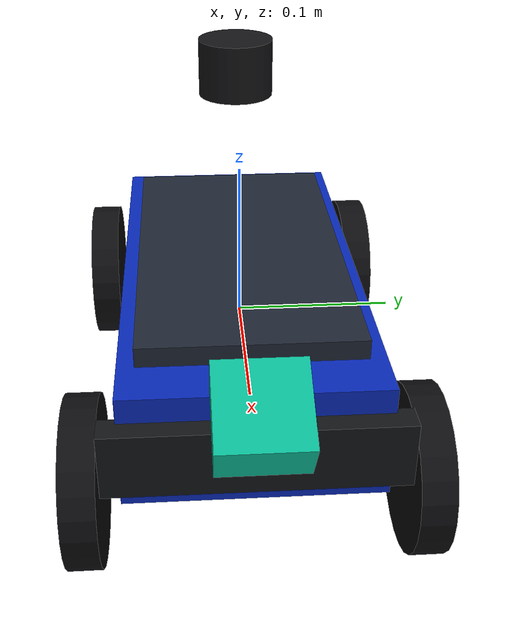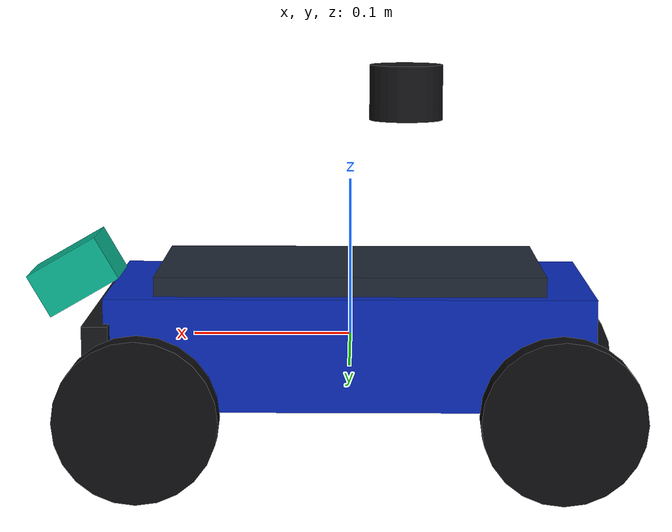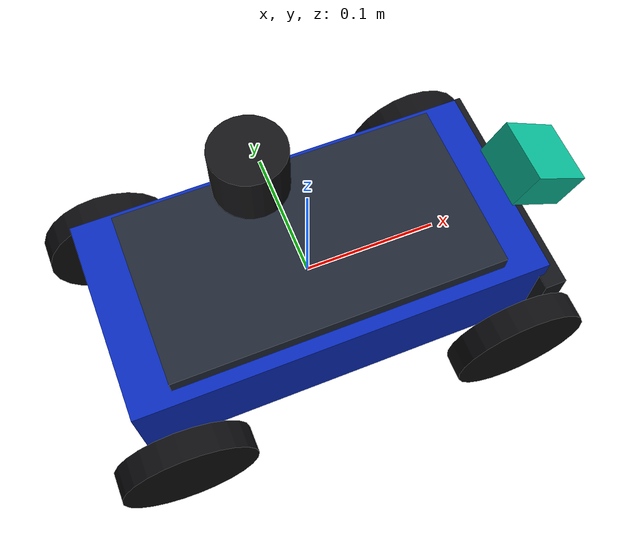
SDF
<sdf version='1.7'>
  <model name='ackermann_chassis'>
    <link name='base_link'>
      <inertial>
        <pose>0.009651 0 0.006771 0 -0 0</pose>
        <mass>1.6461</mass>
        <inertia>
          <ixx>0.00465958</ixx>
          <ixy>0</ixy>
          <ixz>-0.000336573</ixz>
          <iyy>0.0160594</iyy>
          <iyz>0</iyz>
          <izz>0.0170788</izz>
        </inertia>
      </inertial>
      <collision name='base_link_collision'>
        <pose>0 0 0 0 -0 0</pose>
        <geometry>
          <box>
            <size>0.3 0.15 0.07</size>
          </box>
        </geometry>
      </collision>
      <collision name='base_link_fixed_joint_lump__camera_link_collision_1'>
        <pose>0.175 0 0.04 0 0.523 0</pose>
        <geometry>
          <box>
            <size>0.05 0.05 0.03</size>
          </box>
        </geometry>
        <surface>
          <contact>
            <ode/>
          </contact>
          <friction>
            <ode/>
          </friction>
        </surface>
      </collision>
      <collision name='base_link_fixed_joint_lump__lidar_link_collision_2'>
        <pose>-0.035 0 0.155 0 -0 0</pose>
        <geometry>
          <cylinder>
            <length>0.0348</length>
            <radius>0.02315</radius>
          </cylinder>
        </geometry>
        <surface>
          <contact>
            <ode/>
          </contact>
          <friction>
            <ode/>
          </friction>
        </surface>
      </collision>
      <visual name='base_link_visual'>
        <pose>0 0 0 0 -0 0</pose>
        <geometry>
          <box>
            <size>0.3 0.15 0.07</size>
          </box>
        </geometry>
        <material>
          <ambient>0.02 0.08 0.42 1</ambient>
          <diffuse>0.03 0.16 0.72 1</diffuse>
          <specular>0.18 0.18 0.2 1</specular>
        </material>
      </visual>
      <visual name='upper_deck_visual'>
        <pose>0 0 0.04 0 0 0</pose>
        <geometry>
          <box>
            <size>0.24 0.13 0.014</size>
          </box>
        </geometry>
        <material>
          <ambient>0.08 0.1 0.14 1</ambient>
          <diffuse>0.12 0.15 0.2 1</diffuse>
          <specular>0.12 0.12 0.12 1</specular>
        </material>
      </visual>
      <visual name='front_bumper_visual'>
        <pose>0.154 0 0 0 0 0</pose>
        <geometry>
          <box>
            <size>0.016 0.17 0.04</size>
          </box>
        </geometry>
        <material>
          <ambient>0.04 0.05 0.06 1</ambient>
          <diffuse>0.07 0.08 0.09 1</diffuse>
        </material>
      </visual>
      <visual name='base_link_fixed_joint_lump__camera_link_visual_1'>
        <pose>0.175 0 0.04 0 0.523 0</pose>
        <geometry>
          <box>
            <size>0.05 0.05 0.03</size>
          </box>
        </geometry>
        <material>
          <ambient>0.02 0.45 0.38 1</ambient>
          <diffuse>0.03 0.72 0.58 1</diffuse>
        </material>
      </visual>
      <visual name='base_link_fixed_joint_lump__lidar_link_visual_2'>
        <pose>-0.035 0 0.155 0 -0 0</pose>
        <geometry>
          <cylinder>
            <length>0.0348</length>
            <radius>0.02315</radius>
          </cylinder>
        </geometry>
        <material>
          <ambient>0.04 0.04 0.05 1</ambient>
          <diffuse>0.08 0.08 0.09 1</diffuse>
        </material>
      </visual>
      <sensor name='camera' type='camera'>
        <topic>/camera/image_raw</topic>
        <update_rate>30</update_rate>
        <camera>
          <horizontal_fov>1.39626</horizontal_fov>
          <image>
            <width>640</width>
            <height>480</height>
            <format>R8G8B8</format>
          </image>
          <clip>
            <near>0.02</near>
            <far>300</far>
          </clip>
        </camera>
        <always_on>1</always_on>
        <visualize>1</visualize>
        <pose>0.175 0 0.04 0 0.523 0</pose>
      </sensor>
      <sensor name='lidar' type='gpu_lidar'>
        <topic>/scan</topic>
        <update_rate>10</update_rate>
        <lidar>
          <scan>
            <horizontal>
              <samples>360</samples>
              <resolution>1</resolution>
              <min_angle>-3.14159</min_angle>
              <max_angle>3.14159</max_angle>
            </horizontal>
          </scan>
          <range>
            <min>0.12</min>
            <max>10</max>
            <resolution>0.01</resolution>
          </range>
        </lidar>
        <always_on>1</always_on>
        <visualize>1</visualize>
        <pose>-0.035 0 0.155 0 -0 0</pose>
      </sensor>
    </link>
    <joint name='front_left_steer_joint' type='revolute'>
      <pose relative_to='base_link'>0.1285 0.096 -0.035 0 -0 0</pose>
      <parent>base_link</parent>
      <child>front_left_steer_link</child>
      <axis>
        <xyz>0 0 1</xyz>
        <limit>
          <lower>-0.5</lower>
          <upper>0.5</upper>
          <effort>10</effort>
          <velocity>1</velocity>
        </limit>
        <dynamics>
          <spring_reference>0</spring_reference>
          <spring_stiffness>0</spring_stiffness>
        </dynamics>
      </axis>
    </joint>
    <link name='front_left_steer_link'>
      <pose relative_to='front_left_steer_joint'>0 0 0 0 -0 0</pose>
      <inertial>
        <pose>0 0 0 0 -0 0</pose>
        <mass>0.05</mass>
        <inertia>
          <ixx>8.33333e-07</ixx>
          <ixy>0</ixy>
          <ixz>0</ixz>
          <iyy>8.33333e-07</iyy>
          <iyz>0</iyz>
          <izz>8.33333e-07</izz>
        </inertia>
      </inertial>
    </link>
    <joint name='front_left_wheel_joint' type='revolute'>
      <pose relative_to='front_left_steer_link'>0 0 0 -1.5707 0 0</pose>
      <parent>front_left_steer_link</parent>
      <child>front_left_wheel_link</child>
      <axis>
        <xyz>0 0 1</xyz>
        <limit>
          <lower>-1e+16</lower>
          <upper>1e+16</upper>
          <effort>10</effort>
          <velocity>10</velocity>
        </limit>
        <dynamics>
          <spring_reference>0</spring_reference>
          <spring_stiffness>0</spring_stiffness>
        </dynamics>
      </axis>
    </joint>
    <link name='front_left_wheel_link'>
      <pose relative_to='front_left_wheel_joint'>0 0 0 0 -0 0</pose>
      <inertial>
        <pose>0 0 0 0 -0 0</pose>
        <mass>0.1</mass>
        <inertia>
          <ixx>6.58333e-05</ixx>
          <ixy>0</ixy>
          <ixz>0</ixz>
          <iyy>6.58333e-05</iyy>
          <iyz>0</iyz>
          <izz>0.000125</izz>
        </inertia>
      </inertial>
      <collision name='front_left_wheel_link_collision'>
        <pose>0 0 0 0 -0 0</pose>
        <geometry>
          <cylinder>
            <length>0.02</length>
            <radius>0.05</radius>
          </cylinder>
        </geometry>
        <surface>
          <friction>
            <ode>
              <mu>0.9</mu>
              <mu2>0.9</mu2>
            </ode>
          </friction>
        </surface>
      </collision>
      <visual name='front_left_wheel_link_visual'>
        <pose>0 0 0 0 -0 0</pose>
        <geometry>
          <cylinder>
            <length>0.02</length>
            <radius>0.05</radius>
          </cylinder>
        </geometry>
        <material>
          <ambient>0.025 0.025 0.03 1</ambient>
          <diffuse>0.05 0.05 0.06 1</diffuse>
        </material>
      </visual>
    </link>
    <joint name='front_right_steer_joint' type='revolute'>
      <pose relative_to='base_link'>0.1285 -0.096 -0.035 0 -0 0</pose>
      <parent>base_link</parent>
      <child>front_right_steer_link</child>
      <axis>
        <xyz>0 0 1</xyz>
        <limit>
          <lower>-0.5</lower>
          <upper>0.5</upper>
          <effort>10</effort>
          <velocity>1</velocity>
        </limit>
        <dynamics>
          <spring_reference>0</spring_reference>
          <spring_stiffness>0</spring_stiffness>
        </dynamics>
      </axis>
    </joint>
    <link name='front_right_steer_link'>
      <pose relative_to='front_right_steer_joint'>0 0 0 0 -0 0</pose>
      <inertial>
        <pose>0 0 0 0 -0 0</pose>
        <mass>0.05</mass>
        <inertia>
          <ixx>8.33333e-07</ixx>
          <ixy>0</ixy>
          <ixz>0</ixz>
          <iyy>8.33333e-07</iyy>
          <iyz>0</iyz>
          <izz>8.33333e-07</izz>
        </inertia>
      </inertial>
    </link>
    <joint name='front_right_wheel_joint' type='revolute'>
      <pose relative_to='front_right_steer_link'>0 0 0 -1.5707 0 0</pose>
      <parent>front_right_steer_link</parent>
      <child>front_right_wheel_link</child>
      <axis>
        <xyz>0 0 1</xyz>
        <limit>
          <lower>-1e+16</lower>
          <upper>1e+16</upper>
          <effort>10</effort>
          <velocity>10</velocity>
        </limit>
        <dynamics>
          <spring_reference>0</spring_reference>
          <spring_stiffness>0</spring_stiffness>
        </dynamics>
      </axis>
    </joint>
    <link name='front_right_wheel_link'>
      <pose relative_to='front_right_wheel_joint'>0 0 0 0 -0 0</pose>
      <inertial>
        <pose>0 0 0 0 -0 0</pose>
        <mass>0.1</mass>
        <inertia>
          <ixx>6.58333e-05</ixx>
          <ixy>0</ixy>
          <ixz>0</ixz>
          <iyy>6.58333e-05</iyy>
          <iyz>0</iyz>
          <izz>0.000125</izz>
        </inertia>
      </inertial>
      <collision name='front_right_wheel_link_collision'>
        <pose>0 0 0 0 -0 0</pose>
        <geometry>
          <cylinder>
            <length>0.02</length>
            <radius>0.05</radius>
          </cylinder>
        </geometry>
        <surface>
          <friction>
            <ode>
              <mu>0.9</mu>
              <mu2>0.9</mu2>
            </ode>
          </friction>
        </surface>
      </collision>
      <visual name='front_right_wheel_link_visual'>
        <pose>0 0 0 0 -0 0</pose>
        <geometry>
          <cylinder>
            <length>0.02</length>
            <radius>0.05</radius>
          </cylinder>
        </geometry>
        <material>
          <ambient>0.025 0.025 0.03 1</ambient>
          <diffuse>0.05 0.05 0.06 1</diffuse>
        </material>
      </visual>
    </link>
    <joint name='rear_left_wheel_joint' type='revolute'>
      <pose relative_to='base_link'>-0.1285 0.096 -0.035 -1.5707 0 0</pose>
      <parent>base_link</parent>
      <child>rear_left_wheel</child>
      <axis>
        <xyz>0 0 1</xyz>
        <limit>
          <lower>-1e+16</lower>
          <upper>1e+16</upper>
          <effort>10</effort>
          <velocity>10</velocity>
        </limit>
        <dynamics>
          <spring_reference>0</spring_reference>
          <spring_stiffness>0</spring_stiffness>
        </dynamics>
      </axis>
    </joint>
    <link name='rear_left_wheel'>
      <pose relative_to='rear_left_wheel_joint'>0 0 0 0 -0 0</pose>
      <inertial>
        <pose>0 0 0 0 -0 0</pose>
        <mass>0.1</mass>
        <inertia>
          <ixx>6.58333e-05</ixx>
          <ixy>0</ixy>
          <ixz>0</ixz>
          <iyy>6.58333e-05</iyy>
          <iyz>0</iyz>
          <izz>0.000125</izz>
        </inertia>
      </inertial>
      <collision name='rear_left_wheel_collision'>
        <pose>0 0 0 0 -0 0</pose>
        <geometry>
          <cylinder>
            <length>0.02</length>
            <radius>0.05</radius>
          </cylinder>
        </geometry>
        <surface>
          <friction>
            <ode>
              <mu>0.9</mu>
              <mu2>0.9</mu2>
            </ode>
          </friction>
        </surface>
      </collision>
      <visual name='rear_left_wheel_visual'>
        <pose>0 0 0 0 -0 0</pose>
        <geometry>
          <cylinder>
            <length>0.02</length>
            <radius>0.05</radius>
          </cylinder>
        </geometry>
        <material>
          <ambient>0.025 0.025 0.03 1</ambient>
          <diffuse>0.05 0.05 0.06 1</diffuse>
        </material>
      </visual>
    </link>
    <joint name='rear_right_wheel_joint' type='revolute'>
      <pose relative_to='base_link'>-0.1285 -0.096 -0.035 -1.5707 0 0</pose>
      <parent>base_link</parent>
      <child>rear_right_wheel</child>
      <axis>
        <xyz>0 0 1</xyz>
        <limit>
          <lower>-1e+16</lower>
          <upper>1e+16</upper>
          <effort>10</effort>
          <velocity>10</velocity>
        </limit>
        <dynamics>
          <spring_reference>0</spring_reference>
          <spring_stiffness>0</spring_stiffness>
        </dynamics>
      </axis>
    </joint>
    <link name='rear_right_wheel'>
      <pose relative_to='rear_right_wheel_joint'>0 0 0 0 -0 0</pose>
      <inertial>
        <pose>0 0 0 0 -0 0</pose>
        <mass>0.1</mass>
        <inertia>
          <ixx>6.58333e-05</ixx>
          <ixy>0</ixy>
          <ixz>0</ixz>
          <iyy>6.58333e-05</iyy>
          <iyz>0</iyz>
          <izz>0.000125</izz>
        </inertia>
      </inertial>
      <collision name='rear_right_wheel_collision'>
        <pose>0 0 0 0 -0 0</pose>
        <geometry>
          <cylinder>
            <length>0.02</length>
            <radius>0.05</radius>
          </cylinder>
        </geometry>
        <surface>
          <friction>
            <ode>
              <mu>0.9</mu>
              <mu2>0.9</mu2>
            </ode>
          </friction>
        </surface>
      </collision>
      <visual name='rear_right_wheel_visual'>
        <pose>0 0 0 0 -0 0</pose>
        <geometry>
          <cylinder>
            <length>0.02</length>
            <radius>0.05</radius>
          </cylinder>
        </geometry>
        <material>
          <ambient>0.025 0.025 0.03 1</ambient>
          <diffuse>0.05 0.05 0.06 1</diffuse>
        </material>
      </visual>
    </link>
    <static>0</static>
    <plugin name='gz::sim::systems::AckermannSteering' filename='gz-sim-ackermann-steering-system'>
      <left_joint>rear_left_wheel_joint</left_joint>
      <right_joint>rear_right_wheel_joint</right_joint>
      <left_steering_joint>front_left_steer_joint</left_steering_joint>
      <right_steering_joint>front_right_steer_joint</right_steering_joint>
      <kingpin_width>0.192</kingpin_width>
      <steering_limit>0.5</steering_limit>
      <wheel_base>0.257</wheel_base>
      <wheel_separation>0.192</wheel_separation>
      <wheel_radius>0.05</wheel_radius>
      <topic>/cmd_vel</topic>
    </plugin>
  </model>
</sdf>
